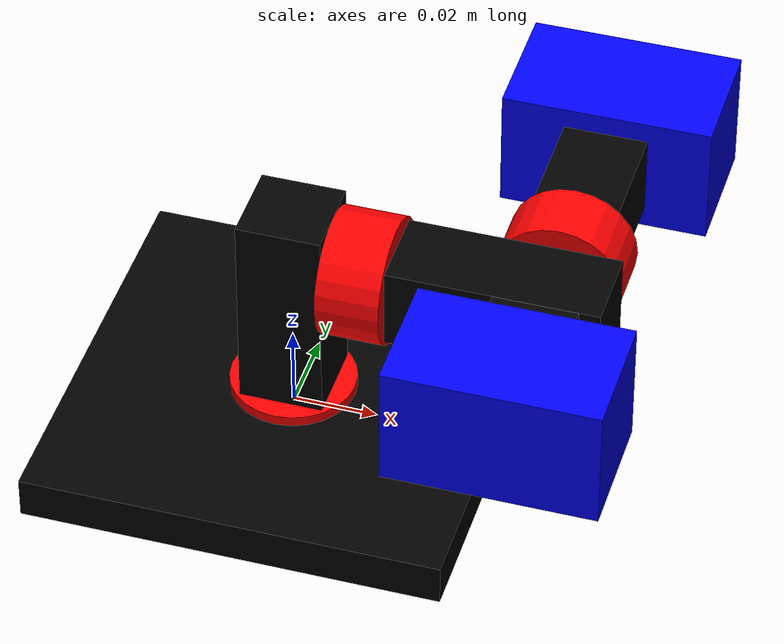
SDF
<?xml version="1.0"?>
<sdf version="1.9">
  <model name="gimbal">
    <!-- GIMBAL -->
    <!-- Gimbal base -->
    <link name="gimbal_base">
      <inertial>
        <inertia>
          <ixx>0.001</ixx>
          <ixy>0</ixy>
          <ixz>0</ixz>
          <iyy>0.001</iyy>
          <iyz>0</iyz>
          <izz>0.001</izz>
        </inertia>
        <mass>0.000001</mass>
      </inertial>

      <visual name="gimbal_base_visual">
        <geometry>
          <box>
            <size>0.1 0.1 0.01</size>
          </box>
        </geometry>

        <material>
            <ambient>0.0 0.0 0.0 1</ambient>
            <diffuse>0.0 0.0 0.0 1</diffuse>
            <specular>0.0 0.0 0.0 1</specular>
        </material>
      </visual>

    </link>

    <!-- Gimbal yaw motor -->
    <link name="gimbal_yaw">
      <pose relative_to="gimbal_base">0.0 0.0 0.0 0.0 0.0 0.0</pose>

      <inertial>
        <inertia>
          <ixx>0.000001</ixx>
          <ixy>0</ixy>
          <ixz>0</ixz>
          <iyy>0.000001</iyy>
          <iyz>0</iyz>
          <izz>0.000001</izz>
        </inertia>
        <mass>0.00001</mass>
      </inertial>

      <visual name="gimbal_yaw_visual">
        <geometry>
          <cylinder>
            <radius>0.015</radius>
            <length>0.015</length>
          </cylinder>
        </geometry>

        <material>
            <ambient>1.0 0.0 0.0 1</ambient>
            <diffuse>1.0 0.0 0.0 1</diffuse>
            <specular>1.0 0.0 0.0 1</specular>
        </material>
      </visual>

    </link>

    <!-- Gimbal base to yaw joint -->
    <joint name="gimbal_base_to_gimbal_yaw_joint" type="fixed">
      <parent>gimbal_base</parent>
      <child>gimbal_yaw</child>
    </joint>

    <!-- Gimbal yaw joint -->
    <joint name="gimbal_yaw_joint" type="revolute">
      <parent>gimbal_yaw</parent>
      <child>gimbal_yaw_bar</child>
      <axis>
        <xyz>0 0 1</xyz>
        <dynamics>
          <damping>1.0</damping>
        </dynamics>
      </axis>
    </joint>
    <plugin
        filename="gz-sim-joint-position-controller-system"
        name="gz::sim::systems::JointPositionController">
      <joint_name>gimbal_yaw_joint</joint_name>
      <topic>/gimbal/joint0/cmd</topic>
      <p_gain>100</p_gain>
      <i_gain>0.0</i_gain>
      <d_gain>1</d_gain>
      <i_max>1</i_max>
      <i_min>-1</i_min>
      <cmd_max>1000</cmd_max>
      <cmd_min>-1000</cmd_min>
    </plugin>
    <plugin
        filename="gz-sim-joint-state-publisher-system"
        name="gz::sim::systems::JointStatePublisher">
      <joint_name>gimbal_yaw_joint</joint_name>
      <topic>/gimbal/joint0/state</topic>
    </plugin>

    <!-- Gimbal yaw bar -->
    <link name="gimbal_yaw_bar">
      <pose relative_to="gimbal_yaw">0.0 0.0 0.0325 0.0 0.0 0.0</pose>

      <inertial>
        <inertia>
          <ixx>0.000001</ixx>
          <ixy>0</ixy>
          <ixz>0</ixz>
          <iyy>0.000001</iyy>
          <iyz>0</iyz>
          <izz>0.000001</izz>
        </inertia>
        <mass>0.00001</mass>
      </inertial>

      <visual name="gimbal_yaw_bar_visual">
        <geometry>
          <box>
            <size>0.02 0.02 0.05</size>
          </box>
        </geometry>

        <material>
            <ambient>0.0 0.0 0.0 1</ambient>
            <diffuse>0.0 0.0 0.0 1</diffuse>
            <specular>0.0 0.0 0.0 1</specular>
        </material>
      </visual>

    </link>

    <!-- Gimbal roll motor -->
    <link name="gimbal_roll">
      <pose relative_to="gimbal_yaw_bar">0.0175 0.0 0.01 0.0 1.5708 0.0</pose>

      <inertial>
        <inertia>
          <ixx>0.000001</ixx>
          <ixy>0</ixy>
          <ixz>0</ixz>
          <iyy>0.000001</iyy>
          <iyz>0</iyz>
          <izz>0.000001</izz>
        </inertia>
        <mass>0.00001</mass>
      </inertial>

      <visual name="gimbal_roll_visual">
        <geometry>
          <cylinder>
            <radius>0.015</radius>
            <length>0.015</length>
          </cylinder>
        </geometry>

        <material>
            <ambient>1.0 0.0 0.0 1</ambient>
            <diffuse>1.0 0.0 0.0 1</diffuse>
            <specular>1.0 0.0 0.0 1</specular>
        </material>
      </visual>

      <collision name="gimbal_roll_collision">
        <geometry>
          <cylinder>
            <radius>0.015</radius>
            <length>0.015</length>
          </cylinder>
        </geometry>
      </collision>
    </link>

    <!-- Gimbal roll bar -->
    <link name="gimbal_roll_bar">
      <pose relative_to="gimbal_roll">0.0 0.0 0.0325 0.0 0.0 0.0</pose>

      <inertial>
        <inertia>
          <ixx>0.001</ixx>
          <ixy>0</ixy>
          <ixz>0</ixz>
          <iyy>0.001</iyy>
          <iyz>0</iyz>
          <izz>0.001</izz>
        </inertia>
        <mass>0.0001</mass>
      </inertial>

      <visual name="gimbal_roll_bar_visual">
        <geometry>
          <box>
            <size>0.02 0.02 0.05</size>
          </box>
        </geometry>

        <material>
            <ambient>0.0 0.0 0.0 1</ambient>
            <diffuse>0.0 0.0 0.0 1</diffuse>
            <specular>0.0 0.0 0.0 1</specular>
        </material>
      </visual>

      <collision name="gimbal_roll_bar_collision">
        <pose>0.0 0.0 0.0 0 0 0</pose>
        <geometry>
          <box>
            <size>0.02 0.02 0.05</size>
          </box>
        </geometry>
      </collision>
    </link>

    <!-- Gimbal yaw bar to roll joint -->
    <joint name="gimbal_yaw_bar_to_gimbal_roll_joint" type="fixed">
      <parent>gimbal_yaw_bar</parent>
      <child>gimbal_roll</child>
    </joint>

    <!-- Gimbal roll joint -->
    <joint name="gimbal_roll_joint" type="revolute">
      <parent>gimbal_roll</parent>
      <child>gimbal_roll_bar</child>
      <axis>
        <xyz>0 0 1</xyz>
        <dynamics>
          <damping>1.0</damping>
        </dynamics>
      </axis>
    </joint>
    <plugin
        filename="gz-sim-joint-position-controller-system"
        name="gz::sim::systems::JointPositionController">
      <joint_name>gimbal_roll_joint</joint_name>
      <topic>/gimbal/joint1/cmd</topic>
      <p_gain>100</p_gain>
      <i_gain>0.0</i_gain>
      <d_gain>1</d_gain>
      <i_max>1</i_max>
      <i_min>-1</i_min>
      <cmd_max>1000</cmd_max>
      <cmd_min>-1000</cmd_min>
    </plugin>
    <plugin
        filename="gz-sim-joint-state-publisher-system"
        name="gz::sim::systems::JointStatePublisher">
      <joint_name>gimbal_roll_joint</joint_name>
      <topic>/gimbal/joint1/state</topic>
    </plugin>

    <!-- Gimbal pitch motor -->
    <link name="gimbal_pitch">
      <pose relative_to="gimbal_roll_bar">0.0 0.0175 0.01 -1.5708 0.0 0.0</pose>

      <inertial>
        <inertia>
          <ixx>0.00001</ixx>
          <ixy>0</ixy>
          <ixz>0</ixz>
          <iyy>0.00001</iyy>
          <iyz>0</iyz>
          <izz>0.00001</izz>
        </inertia>
        <mass>0.0001</mass>
      </inertial>

      <visual name="gimbal_pitch_visual">
        <geometry>
          <cylinder>
            <radius>0.015</radius>
            <length>0.015</length>
          </cylinder>
        </geometry>

        <material>
            <ambient>1.0 0.0 0.0 1</ambient>
            <diffuse>1.0 0.0 0.0 1</diffuse>
            <specular>1.0 0.0 0.0 1</specular>
        </material>
      </visual>

      <collision name="gimbal_pitch_collision">
        <geometry>
          <cylinder>
            <radius>0.015</radius>
            <length>0.015</length>
          </cylinder>
        </geometry>
      </collision>
    </link>

    <!-- Gimbal pitch bar -->
    <link name="gimbal_pitch_bar">
      <pose relative_to="gimbal_pitch">0.0 0.0 0.0 0.0 3.14 0.0</pose>

      <inertial>
        <inertia>
          <ixx>0.001</ixx>
          <ixy>0</ixy>
          <ixz>0</ixz>
          <iyy>0.001</iyy>
          <iyz>0</iyz>
          <izz>0.001</izz>
        </inertia>
        <mass>0.0001</mass>
      </inertial>

      <visual name="gimbal_pitch_bar_visual">
        <geometry>
          <box>
            <size>0.02 0.02 0.10</size>
          </box>
        </geometry>

        <material>
          <ambient>0.0 0.0 0.0 1</ambient>
          <diffuse>0.0 0.0 0.0 1</diffuse>
          <specular>0.0 0.0 0.0 1</specular>
        </material>
      </visual>

      <!-- Camera0 -->
      <visual name="camera0_visual">
        <pose>0 0 0.05 1.5708 0 -1.5708</pose>

        <geometry>
          <box>
            <size>0.05 0.03 0.03</size>
          </box>
        </geometry>

        <material>
          <ambient>0.0 0.0 1.0 1</ambient>
          <diffuse>0.0 0.0 1.0 1</diffuse>
          <specular>0.0 0.0 1.0 1</specular>
        </material>
      </visual>
      <sensor name="camera0" type="camera">
        <pose>0 0 0.05 1.5708 0 -1.5708</pose>

        <topic>/gimbal/camera0</topic>
        <camera>
          <horizontal_fov>1.047</horizontal_fov>
          <image>
            <width>640</width>
            <height>640</height>
          </image>
        </camera>

        <always_on>1</always_on>
        <update_rate>10</update_rate>
        <visualize>true</visualize>
      </sensor>

      <!-- Camera1 -->
      <visual name="camera1_visual">
        <pose>0 0 -0.05 1.5708 0 -1.5708</pose>

        <geometry>
          <box>
            <size>0.05 0.03 0.03</size>
          </box>
        </geometry>

        <material>
          <ambient>0.0 0.0 1.0 1</ambient>
          <diffuse>0.0 0.0 1.0 1</diffuse>
          <specular>0.0 0.0 1.0 1</specular>
        </material>
      </visual>
      <sensor name="camera1" type="camera">
        <pose>0 0 -0.05 1.5708 0 -1.5708</pose>

        <topic>/gimbal/camera1</topic>
        <camera>
          <horizontal_fov>1.047</horizontal_fov>
          <image>
            <width>640</width>
            <height>640</height>
          </image>
        </camera>

        <always_on>1</always_on>
        <update_rate>10</update_rate>
        <visualize>true</visualize>
      </sensor>
    </link>

    <!-- Gimbal roll bar to gimbal pitch joint -->
    <joint name="gimbal_roll_bar_to_gimbal_pitch_joint" type="fixed">
      <parent>gimbal_roll_bar</parent>
      <child>gimbal_pitch</child>
    </joint>

    <!-- Gimbal pitch joint -->
    <joint name="gimbal_pitch_joint" type="revolute">
      <parent>gimbal_pitch</parent>
      <child>gimbal_pitch_bar</child>
      <axis>
        <xyz>0 0 1</xyz>
        <dynamics>
          <damping>1.0</damping>
        </dynamics>
      </axis>
    </joint>
    <plugin
        filename="gz-sim-joint-position-controller-system"
        name="gz::sim::systems::JointPositionController">
      <joint_name>gimbal_pitch_joint</joint_name>
      <topic>/gimbal/joint2/cmd</topic>
      <p_gain>100</p_gain>
      <i_gain>0.0</i_gain>
      <d_gain>1</d_gain>
      <i_max>1</i_max>
      <i_min>-1</i_min>
      <cmd_max>1000</cmd_max>
      <cmd_min>-1000</cmd_min>
    </plugin>
    <plugin
        filename="gz-sim-joint-state-publisher-system"
        name="gz::sim::systems::JointStatePublisher">
      <joint_name>gimbal_pitch_joint</joint_name>
      <topic>/gimbal/joint2/state</topic>
    </plugin>

    <plugin
        filename="libGimbalControllerPlugin"
        name="GimbalControllerPlugin">
      <joint0_cmd_topic>/gimbal/joint0/cmd</joint0_cmd_topic>
      <joint1_cmd_topic>/gimbal/joint1/cmd</joint1_cmd_topic>
      <joint2_cmd_topic>/gimbal/joint2/cmd</joint2_cmd_topic>
      <gimbal_mode_state_topic>/gimbal/mode/state</gimbal_mode_state_topic>
      <target_point_state_topic>/gimbal/target_point/state</target_point_state_topic>
      <target_attitude_state_topic>/gimbal/target_attitude/state</target_attitude_state_topic>
      <gimbal_mode_cmd_topic>/gimbal/mode/cmd</gimbal_mode_cmd_topic>
      <target_point_cmd_topic>/gimbal/target_point/cmd</target_point_cmd_topic>
      <target_attitude_cmd_topic>/gimbal/target_attitude/cmd</target_attitude_cmd_topic>
    </plugin>
  </model>
</sdf>
